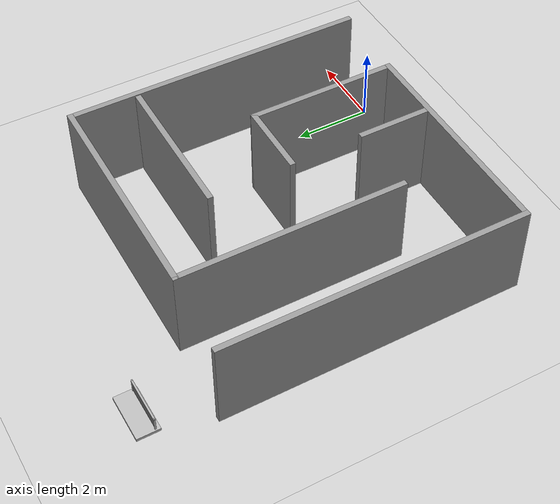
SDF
<sdf version="1.7">
 <world name="default">
  <light name="sun" type="directional">
   <pose>0 0 10 0 -0 0</pose>
   <diffuse>0.8 0.8 0.8 1</diffuse>
   <specular>0.2 0.2 0.2 1</specular>
   <attenuation>
    <range>1000</range>
    <constant>0.9</constant>
    <linear>0.01</linear>
    <quadratic>0.001</quadratic>
   </attenuation>
   <direction>-0.5 0.1 -0.9</direction>
   <spot><inner_angle>0</inner_angle><outer_angle>0</outer_angle><falloff>0</falloff></spot>
  </light>
  <model name="ground_plane">
   <static>1</static>
   <link name="link">
    <collision name="collision">
     <geometry><plane><normal>0 0 1</normal><size>100 100</size></plane></geometry>
     <surface>
      <contact><collide_bitmask>65535</collide_bitmask></contact>
      <friction><ode><mu>100</mu><mu2>50</mu2></ode></friction>
     </surface>
    </collision>
    <visual name="visual">
     <cast_shadows>0</cast_shadows>
     <geometry><plane><normal>0 0 1</normal><size>100 100</size></plane></geometry>
     <material>
      <script><uri>file://media/materials/scripts/gazebo.material</uri><name>Gazebo/Grey</name></script>
     </material>
    </visual>
   </link>
  </model>
  <gravity>0 0 -9.8</gravity>
  <magnetic_field>6e-06 2.3e-05 -4.2e-05</magnetic_field>
  <atmosphere type="adiabatic"/>
  <physics name="default_physics" default="0" type="ode">
   <max_step_size>0.001</max_step_size>
   <real_time_factor>1</real_time_factor>
   <real_time_update_rate>1000</real_time_update_rate>
  </physics>
  <scene><ambient>0.4 0.4 0.4 1</ambient><background>0.7 0.7 0.7 1</background><shadows>1</shadows></scene>
  <audio><device>default</device></audio>
  <spherical_coordinates>
   <surface_model>EARTH_WGS84</surface_model>
   <latitude_deg>0</latitude_deg>
   <longitude_deg>0</longitude_deg>
   <elevation>0</elevation>
   <heading_deg>0</heading_deg>
  </spherical_coordinates>
  <model name="small_maze">
   <pose>-2.93663 3.94547 0 0 -0 0</pose>
   <link name="Wall_11">
    <collision name="Wall_11_Collision">
     <geometry><box><size>6 0.15 2.5</size></box></geometry>
     <pose>0 0 1.25 0 -0 0</pose>
    </collision>
    <visual name="Wall_11_Visual">
     <pose>0 0 1.25 0 -0 0</pose>
     <geometry><box><size>6 0.15 2.5</size></box></geometry>
     <material>
      <script><uri>file://media/materials/scripts/gazebo.material</uri><name>Gazebo/Grey</name></script>
      <ambient>1 1 1 1</ambient>
     </material>
     <meta><layer>0</layer></meta>
    </visual>
    <pose>-1.85079 0.957737 0 0 -0 1.5708</pose>
   </link>
   <link name="Wall_12">
    <collision name="Wall_12_Collision">
     <geometry><box><size>6 0.15 2.5</size></box></geometry>
     <pose>0 0 1.25 0 -0 0</pose>
    </collision>
    <visual name="Wall_12_Visual">
     <pose>0 0 1.25 0 -0 0</pose>
     <geometry><box><size>6 0.15 2.5</size></box></geometry>
     <material>
      <script><uri>file://media/materials/scripts/gazebo.material</uri><name>Gazebo/Grey</name></script>
      <ambient>1 1 1 1</ambient>
     </material>
     <meta><layer>0</layer></meta>
    </visual>
    <pose>1.07421 3.88274 0 0 -0 0</pose>
   </link>
   <link name="Wall_13">
    <collision name="Wall_13_Collision">
     <geometry><box><size>8 0.15 2.5</size></box></geometry>
     <pose>0 0 1.25 0 -0 0</pose>
    </collision>
    <visual name="Wall_13_Visual">
     <pose>0 0 1.25 0 -0 0</pose>
     <geometry><box><size>8 0.15 2.5</size></box></geometry>
     <material>
      <script><uri>file://media/materials/scripts/gazebo.material</uri><name>Gazebo/Grey</name></script>
      <ambient>1 1 1 1</ambient>
     </material>
     <meta><layer>0</layer></meta>
    </visual>
    <pose>3.99921 -0.042263 0 0 -0 -1.5708</pose>
   </link>
   <link name="Wall_15">
    <collision name="Wall_15_Collision">
     <geometry><box><size>4 0.15 2.5</size></box></geometry>
     <pose>0 0 1.25 0 -0 0</pose>
    </collision>
    <visual name="Wall_15_Visual">
     <pose>0 0 1.25 0 -0 0</pose>
     <geometry><box><size>4 0.15 2.5</size></box></geometry>
     <material>
      <script><uri>file://media/materials/scripts/gazebo.material</uri><name>Gazebo/Grey</name></script>
      <ambient>1 1 1 1</ambient>
     </material>
     <meta><layer>0</layer></meta>
    </visual>
    <pose>1.8936 2.14439 0 0 -0 0</pose>
   </link>
   <link name="Wall_4">
    <collision name="Wall_4_Collision">
     <geometry><box><size>8 0.15 2.5</size></box></geometry>
     <pose>0 0 1.25 0 -0 0</pose>
    </collision>
    <visual name="Wall_4_Visual">
     <pose>0 0 1.25 0 -0 0</pose>
     <geometry><box><size>8 0.15 2.5</size></box></geometry>
     <material>
      <script><uri>file://media/materials/scripts/gazebo.material</uri><name>Gazebo/Grey</name></script>
      <ambient>1 1 1 1</ambient>
     </material>
     <meta><layer>0</layer></meta>
    </visual>
    <pose>-3.99921 0.042263 0 0 -0 -1.5708</pose>
   </link>
   <link name="Wall_5">
    <collision name="Wall_5_Collision">
     <geometry><box><size>6 0.15 2.5</size></box></geometry>
     <pose>0 0 1.25 0 -0 0</pose>
    </collision>
    <visual name="Wall_5_Visual">
     <pose>0 0 1.25 0 -0 0</pose>
     <geometry><box><size>6 0.15 2.5</size></box></geometry>
     <material>
      <script><uri>file://media/materials/scripts/gazebo.material</uri><name>Gazebo/Grey</name></script>
      <ambient>1 1 1 1</ambient>
     </material>
     <meta><layer>0</layer></meta>
    </visual>
    <pose>-1.07421 -3.88274 0 0 -0 0</pose>
   </link>
   <link name="Wall_6">
    <collision name="Wall_6_Collision">
     <geometry><box><size>4 0.15 2.5</size></box></geometry>
     <pose>0 0 1.25 0 -0 0</pose>
    </collision>
    <visual name="Wall_6_Visual">
     <pose>0 0 1.25 0 -0 0</pose>
     <geometry><box><size>4 0.15 2.5</size></box></geometry>
     <material>
      <script><uri>file://media/materials/scripts/gazebo.material</uri><name>Gazebo/Grey</name></script>
      <ambient>1 1 1 1</ambient>
     </material>
     <meta><layer>0</layer></meta>
    </visual>
    <pose>1.85079 -1.95774 0 0 -0 1.5708</pose>
   </link>
   <link name="Wall_7">
    <collision name="Wall_7_Collision">
     <geometry><box><size>2 0.15 2.5</size></box></geometry>
     <pose>0 0 1.25 0 -0 0</pose>
    </collision>
    <visual name="Wall_7_Visual">
     <pose>0 0 1.25 0 -0 0</pose>
     <geometry><box><size>2 0.15 2.5</size></box></geometry>
     <material>
      <script><uri>file://media/materials/scripts/gazebo.material</uri><name>Gazebo/Grey</name></script>
      <ambient>1 1 1 1</ambient>
     </material>
     <meta><layer>0</layer></meta>
    </visual>
    <pose>0.925794 -0.032737 0 0 -0 3.14159</pose>
   </link>
   <link name="Wall_9">
    <collision name="Wall_9_Collision">
     <geometry><box><size>2 0.15 2.5</size></box></geometry>
     <pose>0 0 1.25 0 -0 0</pose>
    </collision>
    <visual name="Wall_9_Visual">
     <pose>0 0 1.25 0 -0 0</pose>
     <geometry><box><size>2 0.15 2.5</size></box></geometry>
     <material>
      <script><uri>file://media/materials/scripts/gazebo.material</uri><name>Gazebo/Grey</name></script>
      <ambient>1 1 1 1</ambient>
     </material>
     <meta><layer>0</layer></meta>
    </visual>
    <pose>0.002794 -2.91624 0 0 -0 1.5708</pose>
   </link>
   <static>1</static>
  </model>
  <model name="frc2016_lowbar">
   <link name="base">
    <inertial>
     <mass>50</mass>
     <inertia>
      <ixx>0.035543</ixx>
      <ixy>0</ixy>
      <ixz>0</ixz>
      <iyy>0.134412</iyy>
      <iyz>0</iyz>
      <izz>0.165376</izz>
     </inertia>
    </inertial>
    <visual name="platform">
     <pose>0 0 0.039065 0 -0 0</pose>
     <geometry><box><size>1.26 0.5996 0.07813</size></box></geometry>
    </visual>
    <collision name="platform">
     <pose>0 0 0.039065 0 -0 0</pose>
     <geometry><box><size>1.27 0.6096 0.07813</size></box></geometry>
    </collision>
    <visual name="right_column">
     <pose>-0.57845 -0.18464 0.26863 0 -0 0</pose>
     <geometry><cylinder><radius>0.0254</radius><length>0.381</length></cylinder></geometry>
    </visual>
    <collision name="right_column">
     <pose>-0.57845 -0.18464 0.26863 0 -0 0</pose>
     <geometry><cylinder><radius>0.0254</radius><length>0.381</length></cylinder></geometry>
    </collision>
    <visual name="left_column">
     <pose>0.57845 -0.18464 0.26863 0 -0 0</pose>
     <geometry><cylinder><radius>0.0254</radius><length>0.381</length></cylinder></geometry>
    </visual>
    <collision name="left_column">
     <pose>0.57845 -0.18464 0.26863 0 -0 0</pose>
     <geometry><cylinder><radius>0.0254</radius><length>0.381</length></cylinder></geometry>
    </collision>
    <visual name="horizontal">
     <pose>0 -0.18464 0.43556 0 1.5707 0</pose>
     <geometry><cylinder><radius>0.0254</radius><length>1.2018</length></cylinder></geometry>
    </visual>
    <collision name="horizontal">
     <pose>0 -0.18464 0.43556 0 1.5707 0</pose>
     <geometry><cylinder><radius>0.0254</radius><length>1.2018</length></cylinder></geometry>
    </collision>
   </link>
   <link name="wall">
    <pose>0 -0.1778 0.24323 0 -0 0</pose>
    <inertial>
     <mass>1</mass>
     <inertia>
      <ixx>0.00774528</ixx>
      <ixy>0</ixy>
      <ixz>0</ixz>
      <iyy>0.116613</iyy>
      <iyz>0</iyz>
      <izz>0.108874</izz>
     </inertia>
    </inertial>
    <visual name="visual">
     <geometry><box><size>1.1176 0.00635 0.3</size></box></geometry>
     <material><ambient>0.46 0.46 0.46 1</ambient><diffuse>0.46 0.46 0.46 1</diffuse></material>
    </visual>
    <collision name="collision"><geometry><box><size>1.143 0.00635 0.3</size></box></geometry></collision>
   </link>
   <joint name="bar_joint" type="revolute">
    <pose>0 0 0.36378 0 -0 0</pose>
    <parent>base</parent>
    <child>wall</child>
    <axis>
     <xyz>1 0 0</xyz>
     <limit><lower>-1.5707</lower><upper>1.5707</upper></limit>
     <dynamics><spring_reference>0</spring_reference><spring_stiffness>0</spring_stiffness></dynamics>
    </axis>
   </joint>
   <pose>-5.96869 9.48758 -5e-06 2.5e-05 4e-06 0.005233</pose>
  </model>
 </world>
</sdf>
